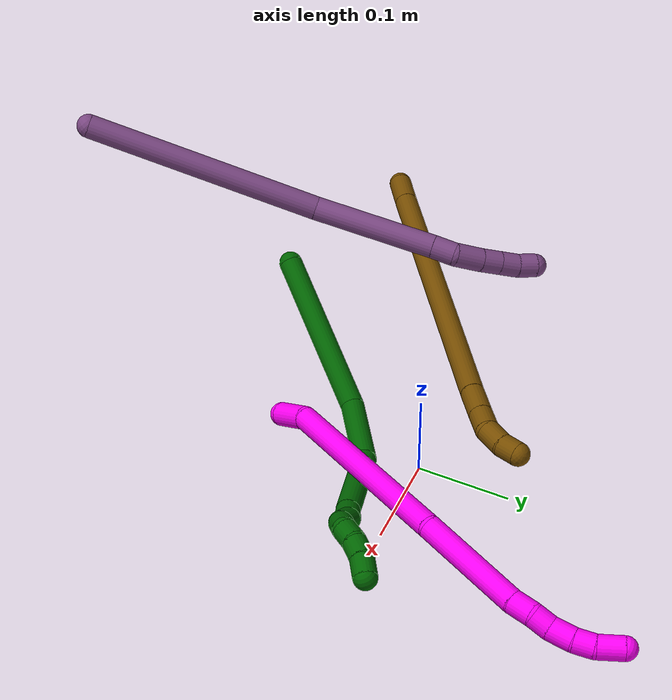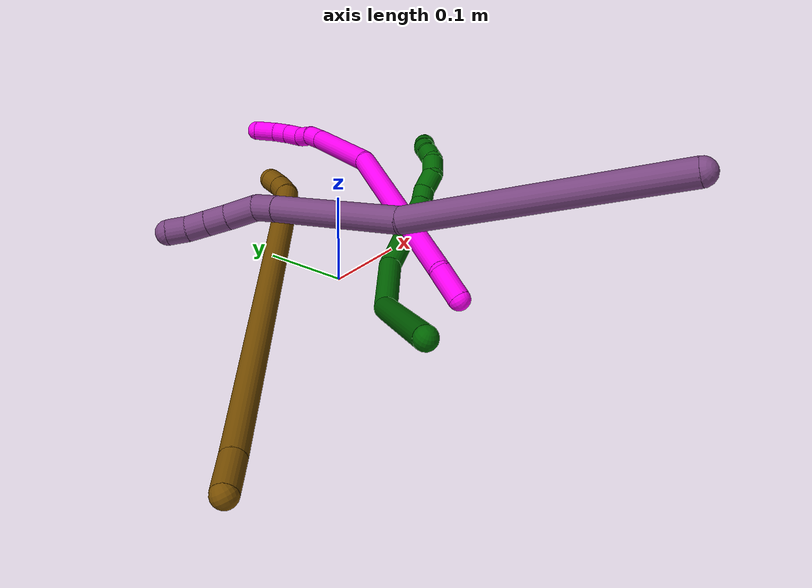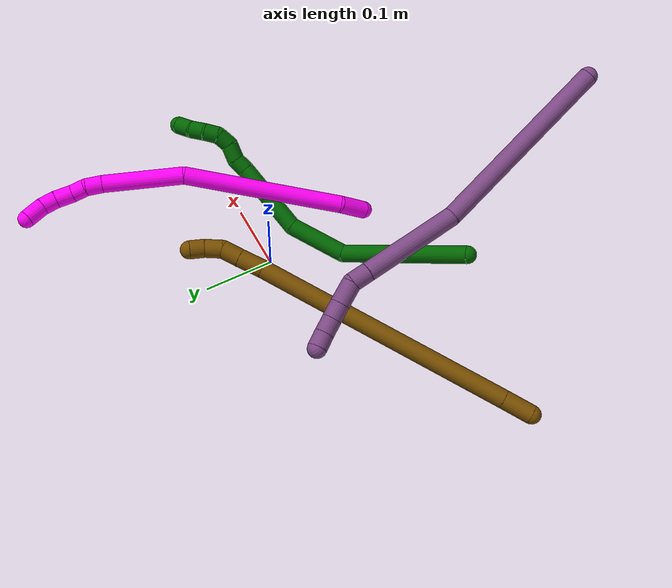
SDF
<sdf version="1.7">
 <world name="default">
  <model name="6">
   <static>0</static>
   <link name="6">
    <collision name="collision-cylinder-e_1_1_4">
     <pose>0.067338 0.02896 -0.053006 -2.64155 0.839648 -2.10228</pose>
     <geometry><cylinder><radius>0.0125</radius><length>0.180918</length></cylinder></geometry>
     <surface>
      <friction><ode><mu>1.16</mu><mu2>1.16</mu2><slip1>0</slip1><slip2>0</slip2></ode></friction>
      <contact><ode><kp>1e+06</kp><kd>1</kd><max_vel>0</max_vel><min_depth>0.001</min_depth></ode></contact>
     </surface>
    </collision>
    <visual name="visual-cylinder-e_1_1_4">
     <pose>0.067338 0.02896 -0.053006 -2.64155 0.839648 -2.10228</pose>
     <geometry><cylinder><radius>0.0125</radius><length>0.180918</length></cylinder></geometry>
     <material><ambient>0 0.392157 0.003922 1</ambient></material>
    </visual>
    <collision name="collision-cylinder-e_2_4_5">
     <pose>0.174489 0.070004 -0.11119 -1.97562 1.25188 -1.66256</pose>
     <geometry><cylinder><radius>0.0125</radius><length>0.083853</length></cylinder></geometry>
     <surface>
      <friction><ode><mu>1.16</mu><mu2>1.16</mu2><slip1>0</slip1><slip2>0</slip2></ode></friction>
      <contact><ode><kp>1e+06</kp><kd>1</kd><max_vel>0</max_vel><min_depth>0.001</min_depth></ode></contact>
     </surface>
    </collision>
    <visual name="visual-cylinder-e_2_4_5">
     <pose>0.174489 0.070004 -0.11119 -1.97562 1.25188 -1.66256</pose>
     <geometry><cylinder><radius>0.0125</radius><length>0.083853</length></cylinder></geometry>
     <material><ambient>0 0.392157 0.003922 1</ambient></material>
    </visual>
    <collision name="collision-cylinder-e_3_5_6">
     <pose>0.266361 0.08673 -0.104798 -0.381644 1.33577 -0.302428</pose>
     <geometry><cylinder><radius>0.0125</radius><length>0.107063</length></cylinder></geometry>
     <surface>
      <friction><ode><mu>1.16</mu><mu2>1.16</mu2><slip1>0</slip1><slip2>0</slip2></ode></friction>
      <contact><ode><kp>1e+06</kp><kd>1</kd><max_vel>0</max_vel><min_depth>0.001</min_depth></ode></contact>
     </surface>
    </collision>
    <visual name="visual-cylinder-e_3_5_6">
     <pose>0.266361 0.08673 -0.104798 -0.381644 1.33577 -0.302428</pose>
     <geometry><cylinder><radius>0.0125</radius><length>0.107063</length></cylinder></geometry>
     <material><ambient>0 0.392157 0.003922 1</ambient></material>
    </visual>
    <collision name="collision-cylinder-e_4_6_7">
     <pose>0.327793 0.094303 -0.090663 -0.851566 1.17688 -0.587748</pose>
     <geometry><cylinder><radius>0.0125</radius><length>0.020298</length></cylinder></geometry>
     <surface>
      <friction><ode><mu>1.16</mu><mu2>1.16</mu2><slip1>0</slip1><slip2>0</slip2></ode></friction>
      <contact><ode><kp>1e+06</kp><kd>1</kd><max_vel>0</max_vel><min_depth>0.001</min_depth></ode></contact>
     </surface>
    </collision>
    <visual name="visual-cylinder-e_4_6_7">
     <pose>0.327793 0.094303 -0.090663 -0.851566 1.17688 -0.587748</pose>
     <geometry><cylinder><radius>0.0125</radius><length>0.020298</length></cylinder></geometry>
     <material><ambient>0 0.392157 0.003922 1</ambient></material>
    </visual>
    <collision name="collision-cylinder-e_5_7_8">
     <pose>0.347242 0.097735 -0.081274 -0.073385 0.97439 -0.038891</pose>
     <geometry><cylinder><radius>0.0125</radius><length>0.024361</length></cylinder></geometry>
     <surface>
      <friction><ode><mu>1.16</mu><mu2>1.16</mu2><slip1>0</slip1><slip2>0</slip2></ode></friction>
      <contact><ode><kp>1e+06</kp><kd>1</kd><max_vel>0</max_vel><min_depth>0.001</min_depth></ode></contact>
     </surface>
    </collision>
    <visual name="visual-cylinder-e_5_7_8">
     <pose>0.347242 0.097735 -0.081274 -0.073385 0.97439 -0.038891</pose>
     <geometry><cylinder><radius>0.0125</radius><length>0.024361</length></cylinder></geometry>
     <material><ambient>0 0.392157 0.003922 1</ambient></material>
    </visual>
    <collision name="collision-cylinder-e_6_8_9">
     <pose>0.365999 0.102929 -0.071322 -0.982727 0.994635 -0.565414</pose>
     <geometry><cylinder><radius>0.0125</radius><length>0.020702</length></cylinder></geometry>
     <surface>
      <friction><ode><mu>1.16</mu><mu2>1.16</mu2><slip1>0</slip1><slip2>0</slip2></ode></friction>
      <contact><ode><kp>1e+06</kp><kd>1</kd><max_vel>0</max_vel><min_depth>0.001</min_depth></ode></contact>
     </surface>
    </collision>
    <visual name="visual-cylinder-e_6_8_9">
     <pose>0.365999 0.102929 -0.071322 -0.982727 0.994635 -0.565414</pose>
     <geometry><cylinder><radius>0.0125</radius><length>0.020702</length></cylinder></geometry>
     <material><ambient>0 0.392157 0.003922 1</ambient></material>
    </visual>
    <collision name="collision-cylinder-e_7_9_10">
     <pose>0.382726 0.113534 -0.06983 -1.84076 0.919366 -1.15366</pose>
     <geometry><cylinder><radius>0.0125</radius><length>0.020238</length></cylinder></geometry>
     <surface>
      <friction><ode><mu>1.16</mu><mu2>1.16</mu2><slip1>0</slip1><slip2>0</slip2></ode></friction>
      <contact><ode><kp>1e+06</kp><kd>1</kd><max_vel>0</max_vel><min_depth>0.001</min_depth></ode></contact>
     </surface>
    </collision>
    <visual name="visual-cylinder-e_7_9_10">
     <pose>0.382726 0.113534 -0.06983 -1.84076 0.919366 -1.15366</pose>
     <geometry><cylinder><radius>0.0125</radius><length>0.020238</length></cylinder></geometry>
     <material><ambient>0 0.392157 0.003922 1</ambient></material>
    </visual>
    <collision name="collision-cylinder-e_8_10_11">
     <pose>0.399352 0.123732 -0.074987 -2.2586 0.99692 -1.71157</pose>
     <geometry><cylinder><radius>0.0125</radius><length>0.020429</length></cylinder></geometry>
     <surface>
      <friction><ode><mu>1.16</mu><mu2>1.16</mu2><slip1>0</slip1><slip2>0</slip2></ode></friction>
      <contact><ode><kp>1e+06</kp><kd>1</kd><max_vel>0</max_vel><min_depth>0.001</min_depth></ode></contact>
     </surface>
    </collision>
    <visual name="visual-cylinder-e_8_10_11">
     <pose>0.399352 0.123732 -0.074987 -2.2586 0.99692 -1.71157</pose>
     <geometry><cylinder><radius>0.0125</radius><length>0.020429</length></cylinder></geometry>
     <material><ambient>0 0.392157 0.003922 1</ambient></material>
    </visual>
    <collision name="collision-cylinder-e_9_11_2">
     <pose>0.418059 0.130088 -0.082461 -2.65902 1.15573 -2.41993</pose>
     <geometry><cylinder><radius>0.0125</radius><length>0.022138</length></cylinder></geometry>
     <surface>
      <friction><ode><mu>1.16</mu><mu2>1.16</mu2><slip1>0</slip1><slip2>0</slip2></ode></friction>
      <contact><ode><kp>1e+06</kp><kd>1</kd><max_vel>0</max_vel><min_depth>0.001</min_depth></ode></contact>
     </surface>
    </collision>
    <visual name="visual-cylinder-e_9_11_2">
     <pose>0.418059 0.130088 -0.082461 -2.65902 1.15573 -2.41993</pose>
     <geometry><cylinder><radius>0.0125</radius><length>0.022138</length></cylinder></geometry>
     <material><ambient>0 0.392157 0.003922 1</ambient></material>
    </visual>
    <collision name="collision-sphere-2">
     <pose>0.428188 0.132159 -0.086415 0 -0 0</pose>
     <geometry><sphere><radius>0.0125</radius></sphere></geometry>
     <surface>
      <friction><ode><mu>1.16</mu><mu2>1.16</mu2><slip1>0</slip1><slip2>0</slip2></ode></friction>
      <contact><ode><kp>1e+06</kp><kd>1</kd><max_vel>0</max_vel><min_depth>0.001</min_depth></ode></contact>
     </surface>
    </collision>
    <visual name="visual-sphere-2">
     <pose>0.428188 0.132159 -0.086415 0 -0 0</pose>
     <geometry><sphere><radius>0.0125</radius></sphere></geometry>
     <material><ambient>0 0.392157 0.003922 1</ambient></material>
    </visual>
    <collision name="collision-sphere-11">
     <pose>0.40793 0.128017 -0.078507 0 -0 0</pose>
     <geometry><sphere><radius>0.0125</radius></sphere></geometry>
     <surface>
      <friction><ode><mu>1.16</mu><mu2>1.16</mu2><slip1>0</slip1><slip2>0</slip2></ode></friction>
      <contact><ode><kp>1e+06</kp><kd>1</kd><max_vel>0</max_vel><min_depth>0.001</min_depth></ode></contact>
     </surface>
    </collision>
    <visual name="visual-sphere-11">
     <pose>0.40793 0.128017 -0.078507 0 -0 0</pose>
     <geometry><sphere><radius>0.0125</radius></sphere></geometry>
     <material><ambient>0 0.392157 0.003922 1</ambient></material>
    </visual>
    <collision name="collision-sphere-10">
     <pose>0.390773 0.119447 -0.071466 0 -0 0</pose>
     <geometry><sphere><radius>0.0125</radius></sphere></geometry>
     <surface>
      <friction><ode><mu>1.16</mu><mu2>1.16</mu2><slip1>0</slip1><slip2>0</slip2></ode></friction>
      <contact><ode><kp>1e+06</kp><kd>1</kd><max_vel>0</max_vel><min_depth>0.001</min_depth></ode></contact>
     </surface>
    </collision>
    <visual name="visual-sphere-10">
     <pose>0.390773 0.119447 -0.071466 0 -0 0</pose>
     <geometry><sphere><radius>0.0125</radius></sphere></geometry>
     <material><ambient>0 0.392157 0.003922 1</ambient></material>
    </visual>
    <collision name="collision-sphere-9">
     <pose>0.37468 0.107621 -0.068194 0 -0 0</pose>
     <geometry><sphere><radius>0.0125</radius></sphere></geometry>
     <surface>
      <friction><ode><mu>1.16</mu><mu2>1.16</mu2><slip1>0</slip1><slip2>0</slip2></ode></friction>
      <contact><ode><kp>1e+06</kp><kd>1</kd><max_vel>0</max_vel><min_depth>0.001</min_depth></ode></contact>
     </surface>
    </collision>
    <visual name="visual-sphere-9">
     <pose>0.37468 0.107621 -0.068194 0 -0 0</pose>
     <geometry><sphere><radius>0.0125</radius></sphere></geometry>
     <material><ambient>0 0.392157 0.003922 1</ambient></material>
    </visual>
    <collision name="collision-sphere-4">
     <pose>0.134677 0.057921 -0.106012 0 -0 0</pose>
     <geometry><sphere><radius>0.0125</radius></sphere></geometry>
     <surface>
      <friction><ode><mu>1.16</mu><mu2>1.16</mu2><slip1>0</slip1><slip2>0</slip2></ode></friction>
      <contact><ode><kp>1e+06</kp><kd>1</kd><max_vel>0</max_vel><min_depth>0.001</min_depth></ode></contact>
     </surface>
    </collision>
    <visual name="visual-sphere-4">
     <pose>0.134677 0.057921 -0.106012 0 -0 0</pose>
     <geometry><sphere><radius>0.0125</radius></sphere></geometry>
     <material><ambient>0 0.392157 0.003922 1</ambient></material>
    </visual>
    <collision name="collision-sphere-1">
     <geometry><sphere><radius>0.0125</radius></sphere></geometry>
     <surface>
      <friction><ode><mu>1.16</mu><mu2>1.16</mu2><slip1>0</slip1><slip2>0</slip2></ode></friction>
      <contact><ode><kp>1e+06</kp><kd>1</kd><max_vel>0</max_vel><min_depth>0.001</min_depth></ode></contact>
     </surface>
    </collision>
    <visual name="visual-sphere-1">
     <geometry><sphere><radius>0.0125</radius></sphere></geometry>
     <material><ambient>0 0.392157 0.003922 1</ambient></material>
    </visual>
    <collision name="collision-sphere-8">
     <pose>0.357319 0.098237 -0.074451 0 -0 0</pose>
     <geometry><sphere><radius>0.0125</radius></sphere></geometry>
     <surface>
      <friction><ode><mu>1.16</mu><mu2>1.16</mu2><slip1>0</slip1><slip2>0</slip2></ode></friction>
      <contact><ode><kp>1e+06</kp><kd>1</kd><max_vel>0</max_vel><min_depth>0.001</min_depth></ode></contact>
     </surface>
    </collision>
    <visual name="visual-sphere-8">
     <pose>0.357319 0.098237 -0.074451 0 -0 0</pose>
     <geometry><sphere><radius>0.0125</radius></sphere></geometry>
     <material><ambient>0 0.392157 0.003922 1</ambient></material>
    </visual>
    <collision name="collision-sphere-5">
     <pose>0.214301 0.082087 -0.116367 0 -0 0</pose>
     <geometry><sphere><radius>0.0125</radius></sphere></geometry>
     <surface>
      <friction><ode><mu>1.16</mu><mu2>1.16</mu2><slip1>0</slip1><slip2>0</slip2></ode></friction>
      <contact><ode><kp>1e+06</kp><kd>1</kd><max_vel>0</max_vel><min_depth>0.001</min_depth></ode></contact>
     </surface>
    </collision>
    <visual name="visual-sphere-5">
     <pose>0.214301 0.082087 -0.116367 0 -0 0</pose>
     <geometry><sphere><radius>0.0125</radius></sphere></geometry>
     <material><ambient>0 0.392157 0.003922 1</ambient></material>
    </visual>
    <collision name="collision-sphere-6">
     <pose>0.318421 0.091373 -0.093229 0 -0 0</pose>
     <geometry><sphere><radius>0.0125</radius></sphere></geometry>
     <surface>
      <friction><ode><mu>1.16</mu><mu2>1.16</mu2><slip1>0</slip1><slip2>0</slip2></ode></friction>
      <contact><ode><kp>1e+06</kp><kd>1</kd><max_vel>0</max_vel><min_depth>0.001</min_depth></ode></contact>
     </surface>
    </collision>
    <visual name="visual-sphere-6">
     <pose>0.318421 0.091373 -0.093229 0 -0 0</pose>
     <geometry><sphere><radius>0.0125</radius></sphere></geometry>
     <material><ambient>0 0.392157 0.003922 1</ambient></material>
    </visual>
    <collision name="collision-sphere-7">
     <pose>0.337164 0.097234 -0.088097 0 -0 0</pose>
     <geometry><sphere><radius>0.0125</radius></sphere></geometry>
     <surface>
      <friction><ode><mu>1.16</mu><mu2>1.16</mu2><slip1>0</slip1><slip2>0</slip2></ode></friction>
      <contact><ode><kp>1e+06</kp><kd>1</kd><max_vel>0</max_vel><min_depth>0.001</min_depth></ode></contact>
     </surface>
    </collision>
    <visual name="visual-sphere-7">
     <pose>0.337164 0.097234 -0.088097 0 -0 0</pose>
     <geometry><sphere><radius>0.0125</radius></sphere></geometry>
     <material><ambient>0 0.392157 0.003922 1</ambient></material>
    </visual>
    <inertial>
     <pose>0.20636 0.069053 -0.080401 0 -0 0</pose>
     <mass>0.5</mass>
     <inertia>
      <ixx>-0.000426</ixx>
      <ixy>0</ixy>
      <ixz>0</ixz>
      <iyy>0.000234</iyy>
      <iyz>0</iyz>
      <izz>-0.000729</izz>
     </inertia>
    </inertial>
   </link>
   <pose>-0.154588 -0.221826 0.072921 0.384717 -0.113508 0.257564</pose>
  </model>
  <model name="10">
   <static>0</static>
   <link name="10">
    <collision name="collision-cylinder-e_1_1_4">
     <pose>0.002266 0.019179 -0.004965 -1.82411 0.113876 -0.147004</pose>
     <geometry><cylinder><radius>0.0125</radius><length>0.039881</length></cylinder></geometry>
     <surface>
      <friction><ode><mu>1.16</mu><mu2>1.16</mu2><slip1>0</slip1><slip2>0</slip2></ode></friction>
      <contact><ode><kp>1e+06</kp><kd>1</kd><max_vel>0</max_vel><min_depth>0.001</min_depth></ode></contact>
     </surface>
    </collision>
    <visual name="visual-cylinder-e_1_1_4">
     <pose>0.002266 0.019179 -0.004965 -1.82411 0.113876 -0.147004</pose>
     <geometry><cylinder><radius>0.0125</radius><length>0.039881</length></cylinder></geometry>
     <material><ambient>1 0 0.964706 1</ambient></material>
    </visual>
    <collision name="collision-cylinder-e_2_4_5">
     <pose>0.054549 0.130635 -0.051895 -1.99761 0.458363 -0.695285</pose>
     <geometry><cylinder><radius>0.0125</radius><length>0.226078</length></cylinder></geometry>
     <surface>
      <friction><ode><mu>1.16</mu><mu2>1.16</mu2><slip1>0</slip1><slip2>0</slip2></ode></friction>
      <contact><ode><kp>1e+06</kp><kd>1</kd><max_vel>0</max_vel><min_depth>0.001</min_depth></ode></contact>
     </surface>
    </collision>
    <visual name="visual-cylinder-e_2_4_5">
     <pose>0.054549 0.130635 -0.051895 -1.99761 0.458363 -0.695285</pose>
     <geometry><cylinder><radius>0.0125</radius><length>0.226078</length></cylinder></geometry>
     <material><ambient>1 0 0.964706 1</ambient></material>
    </visual>
    <collision name="collision-cylinder-e_3_5_6">
     <pose>0.129658 0.259878 -0.130156 -2.34705 0.451034 -1.00074</pose>
     <geometry><cylinder><radius>0.0125</radius><length>0.115126</length></cylinder></geometry>
     <surface>
      <friction><ode><mu>1.16</mu><mu2>1.16</mu2><slip1>0</slip1><slip2>0</slip2></ode></friction>
      <contact><ode><kp>1e+06</kp><kd>1</kd><max_vel>0</max_vel><min_depth>0.001</min_depth></ode></contact>
     </surface>
    </collision>
    <visual name="visual-cylinder-e_3_5_6">
     <pose>0.129658 0.259878 -0.130156 -2.34705 0.451034 -1.00074</pose>
     <geometry><cylinder><radius>0.0125</radius><length>0.115126</length></cylinder></geometry>
     <material><ambient>1 0 0.964706 1</ambient></material>
    </visual>
    <collision name="collision-cylinder-e_4_6_7">
     <pose>0.15825 0.304901 -0.174687 -2.36712 0.294945 -0.698626</pose>
     <geometry><cylinder><radius>0.0125</radius><length>0.024081</length></cylinder></geometry>
     <surface>
      <friction><ode><mu>1.16</mu><mu2>1.16</mu2><slip1>0</slip1><slip2>0</slip2></ode></friction>
      <contact><ode><kp>1e+06</kp><kd>1</kd><max_vel>0</max_vel><min_depth>0.001</min_depth></ode></contact>
     </surface>
    </collision>
    <visual name="visual-cylinder-e_4_6_7">
     <pose>0.15825 0.304901 -0.174687 -2.36712 0.294945 -0.698626</pose>
     <geometry><cylinder><radius>0.0125</radius><length>0.024081</length></cylinder></geometry>
     <material><ambient>1 0 0.964706 1</ambient></material>
    </visual>
    <collision name="collision-cylinder-e_5_7_8">
     <pose>0.164932 0.317199 -0.191599 -2.68692 0.318276 -1.21308</pose>
     <geometry><cylinder><radius>0.0125</radius><length>0.020339</length></cylinder></geometry>
     <surface>
      <friction><ode><mu>1.16</mu><mu2>1.16</mu2><slip1>0</slip1><slip2>0</slip2></ode></friction>
      <contact><ode><kp>1e+06</kp><kd>1</kd><max_vel>0</max_vel><min_depth>0.001</min_depth></ode></contact>
     </surface>
    </collision>
    <visual name="visual-cylinder-e_5_7_8">
     <pose>0.164932 0.317199 -0.191599 -2.68692 0.318276 -1.21308</pose>
     <geometry><cylinder><radius>0.0125</radius><length>0.020339</length></cylinder></geometry>
     <material><ambient>1 0 0.964706 1</ambient></material>
    </visual>
    <collision name="collision-cylinder-e_6_8_9">
     <pose>0.170284 0.329164 -0.209997 -2.47019 0.172971 -0.487124</pose>
     <geometry><cylinder><radius>0.0125</radius><length>0.025206</length></cylinder></geometry>
     <surface>
      <friction><ode><mu>1.16</mu><mu2>1.16</mu2><slip1>0</slip1><slip2>0</slip2></ode></friction>
      <contact><ode><kp>1e+06</kp><kd>1</kd><max_vel>0</max_vel><min_depth>0.001</min_depth></ode></contact>
     </surface>
    </collision>
    <visual name="visual-cylinder-e_6_8_9">
     <pose>0.170284 0.329164 -0.209997 -2.47019 0.172971 -0.487124</pose>
     <geometry><cylinder><radius>0.0125</radius><length>0.025206</length></cylinder></geometry>
     <material><ambient>1 0 0.964706 1</ambient></material>
    </visual>
    <collision name="collision-cylinder-e_7_9_10">
     <pose>0.172273 0.343079 -0.228359 -2.51995 -0.016958 0.052779</pose>
     <geometry><cylinder><radius>0.0125</radius><length>0.021265</length></cylinder></geometry>
     <surface>
      <friction><ode><mu>1.16</mu><mu2>1.16</mu2><slip1>0</slip1><slip2>0</slip2></ode></friction>
      <contact><ode><kp>1e+06</kp><kd>1</kd><max_vel>0</max_vel><min_depth>0.001</min_depth></ode></contact>
     </surface>
    </collision>
    <visual name="visual-cylinder-e_7_9_10">
     <pose>0.172273 0.343079 -0.228359 -2.51995 -0.016958 0.052779</pose>
     <geometry><cylinder><radius>0.0125</radius><length>0.021265</length></cylinder></geometry>
     <material><ambient>1 0 0.964706 1</ambient></material>
    </visual>
    <collision name="collision-cylinder-e_8_10_2">
     <pose>0.168107 0.356304 -0.248446 -2.59048 -0.288431 0.948956</pose>
     <geometry><cylinder><radius>0.0125</radius><length>0.028024</length></cylinder></geometry>
     <surface>
      <friction><ode><mu>1.16</mu><mu2>1.16</mu2><slip1>0</slip1><slip2>0</slip2></ode></friction>
      <contact><ode><kp>1e+06</kp><kd>1</kd><max_vel>0</max_vel><min_depth>0.001</min_depth></ode></contact>
     </surface>
    </collision>
    <visual name="visual-cylinder-e_8_10_2">
     <pose>0.168107 0.356304 -0.248446 -2.59048 -0.288431 0.948956</pose>
     <geometry><cylinder><radius>0.0125</radius><length>0.028024</length></cylinder></geometry>
     <material><ambient>1 0 0.964706 1</ambient></material>
    </visual>
    <collision name="collision-sphere-2">
     <pose>0.164121 0.363338 -0.25989 0 -0 0</pose>
     <geometry><sphere><radius>0.0125</radius></sphere></geometry>
     <surface>
      <friction><ode><mu>1.16</mu><mu2>1.16</mu2><slip1>0</slip1><slip2>0</slip2></ode></friction>
      <contact><ode><kp>1e+06</kp><kd>1</kd><max_vel>0</max_vel><min_depth>0.001</min_depth></ode></contact>
     </surface>
    </collision>
    <visual name="visual-sphere-2">
     <pose>0.164121 0.363338 -0.25989 0 -0 0</pose>
     <geometry><sphere><radius>0.0125</radius></sphere></geometry>
     <material><ambient>1 0 0.964706 1</ambient></material>
    </visual>
    <collision name="collision-sphere-10">
     <pose>0.172092 0.34927 -0.237002 0 -0 0</pose>
     <geometry><sphere><radius>0.0125</radius></sphere></geometry>
     <surface>
      <friction><ode><mu>1.16</mu><mu2>1.16</mu2><slip1>0</slip1><slip2>0</slip2></ode></friction>
      <contact><ode><kp>1e+06</kp><kd>1</kd><max_vel>0</max_vel><min_depth>0.001</min_depth></ode></contact>
     </surface>
    </collision>
    <visual name="visual-sphere-10">
     <pose>0.172092 0.34927 -0.237002 0 -0 0</pose>
     <geometry><sphere><radius>0.0125</radius></sphere></geometry>
     <material><ambient>1 0 0.964706 1</ambient></material>
    </visual>
    <collision name="collision-sphere-9">
     <pose>0.172453 0.336887 -0.219717 0 -0 0</pose>
     <geometry><sphere><radius>0.0125</radius></sphere></geometry>
     <surface>
      <friction><ode><mu>1.16</mu><mu2>1.16</mu2><slip1>0</slip1><slip2>0</slip2></ode></friction>
      <contact><ode><kp>1e+06</kp><kd>1</kd><max_vel>0</max_vel><min_depth>0.001</min_depth></ode></contact>
     </surface>
    </collision>
    <visual name="visual-sphere-9">
     <pose>0.172453 0.336887 -0.219717 0 -0 0</pose>
     <geometry><sphere><radius>0.0125</radius></sphere></geometry>
     <material><ambient>1 0 0.964706 1</ambient></material>
    </visual>
    <collision name="collision-sphere-4">
     <pose>0.004532 0.038358 -0.00993 0 -0 0</pose>
     <geometry><sphere><radius>0.0125</radius></sphere></geometry>
     <surface>
      <friction><ode><mu>1.16</mu><mu2>1.16</mu2><slip1>0</slip1><slip2>0</slip2></ode></friction>
      <contact><ode><kp>1e+06</kp><kd>1</kd><max_vel>0</max_vel><min_depth>0.001</min_depth></ode></contact>
     </surface>
    </collision>
    <visual name="visual-sphere-4">
     <pose>0.004532 0.038358 -0.00993 0 -0 0</pose>
     <geometry><sphere><radius>0.0125</radius></sphere></geometry>
     <material><ambient>1 0 0.964706 1</ambient></material>
    </visual>
    <collision name="collision-sphere-1">
     <geometry><sphere><radius>0.0125</radius></sphere></geometry>
     <surface>
      <friction><ode><mu>1.16</mu><mu2>1.16</mu2><slip1>0</slip1><slip2>0</slip2></ode></friction>
      <contact><ode><kp>1e+06</kp><kd>1</kd><max_vel>0</max_vel><min_depth>0.001</min_depth></ode></contact>
     </surface>
    </collision>
    <visual name="visual-sphere-1">
     <geometry><sphere><radius>0.0125</radius></sphere></geometry>
     <material><ambient>1 0 0.964706 1</ambient></material>
    </visual>
    <collision name="collision-sphere-8">
     <pose>0.168115 0.321441 -0.200277 0 -0 0</pose>
     <geometry><sphere><radius>0.0125</radius></sphere></geometry>
     <surface>
      <friction><ode><mu>1.16</mu><mu2>1.16</mu2><slip1>0</slip1><slip2>0</slip2></ode></friction>
      <contact><ode><kp>1e+06</kp><kd>1</kd><max_vel>0</max_vel><min_depth>0.001</min_depth></ode></contact>
     </surface>
    </collision>
    <visual name="visual-sphere-8">
     <pose>0.168115 0.321441 -0.200277 0 -0 0</pose>
     <geometry><sphere><radius>0.0125</radius></sphere></geometry>
     <material><ambient>1 0 0.964706 1</ambient></material>
    </visual>
    <collision name="collision-sphere-5">
     <pose>0.104567 0.222912 -0.09386 0 -0 0</pose>
     <geometry><sphere><radius>0.0125</radius></sphere></geometry>
     <surface>
      <friction><ode><mu>1.16</mu><mu2>1.16</mu2><slip1>0</slip1><slip2>0</slip2></ode></friction>
      <contact><ode><kp>1e+06</kp><kd>1</kd><max_vel>0</max_vel><min_depth>0.001</min_depth></ode></contact>
     </surface>
    </collision>
    <visual name="visual-sphere-5">
     <pose>0.104567 0.222912 -0.09386 0 -0 0</pose>
     <geometry><sphere><radius>0.0125</radius></sphere></geometry>
     <material><ambient>1 0 0.964706 1</ambient></material>
    </visual>
    <collision name="collision-sphere-6">
     <pose>0.15475 0.296844 -0.166452 0 -0 0</pose>
     <geometry><sphere><radius>0.0125</radius></sphere></geometry>
     <surface>
      <friction><ode><mu>1.16</mu><mu2>1.16</mu2><slip1>0</slip1><slip2>0</slip2></ode></friction>
      <contact><ode><kp>1e+06</kp><kd>1</kd><max_vel>0</max_vel><min_depth>0.001</min_depth></ode></contact>
     </surface>
    </collision>
    <visual name="visual-sphere-6">
     <pose>0.15475 0.296844 -0.166452 0 -0 0</pose>
     <geometry><sphere><radius>0.0125</radius></sphere></geometry>
     <material><ambient>1 0 0.964706 1</ambient></material>
    </visual>
    <collision name="collision-sphere-7">
     <pose>0.16175 0.312957 -0.182921 0 -0 0</pose>
     <geometry><sphere><radius>0.0125</radius></sphere></geometry>
     <surface>
      <friction><ode><mu>1.16</mu><mu2>1.16</mu2><slip1>0</slip1><slip2>0</slip2></ode></friction>
      <contact><ode><kp>1e+06</kp><kd>1</kd><max_vel>0</max_vel><min_depth>0.001</min_depth></ode></contact>
     </surface>
    </collision>
    <visual name="visual-sphere-7">
     <pose>0.16175 0.312957 -0.182921 0 -0 0</pose>
     <geometry><sphere><radius>0.0125</radius></sphere></geometry>
     <material><ambient>1 0 0.964706 1</ambient></material>
    </visual>
    <inertial>
     <pose>0.094364 0.199177 -0.10426 0 -0 0</pose>
     <mass>0.5</mass>
     <inertia>
      <ixx>0.0001</ixx>
      <ixy>0</ixy>
      <ixz>0</ixz>
      <iyy>-0.000712</iyy>
      <iyz>0</iyz>
      <izz>-0.001399</izz>
     </inertia>
    </inertial>
   </link>
   <pose>0.008276 -0.15469 0.021081 0.885541 0.379038 0.057408</pose>
  </model>
  <model name="12">
   <static>0</static>
   <link name="12">
    <collision name="collision-cylinder-e_1_1_4">
     <pose>0.0104 0.014576 0.008443 -1.0458 0.553114 -0.324337</pose>
     <geometry><cylinder><radius>0.0125</radius><length>0.039594</length></cylinder></geometry>
     <surface>
      <friction><ode><mu>1.16</mu><mu2>1.16</mu2><slip1>0</slip1><slip2>0</slip2></ode></friction>
      <contact><ode><kp>1e+06</kp><kd>1</kd><max_vel>0</max_vel><min_depth>0.001</min_depth></ode></contact>
     </surface>
    </collision>
    <visual name="visual-cylinder-e_1_1_4">
     <pose>0.0104 0.014576 0.008443 -1.0458 0.553114 -0.324337</pose>
     <geometry><cylinder><radius>0.0125</radius><length>0.039594</length></cylinder></geometry>
     <material><ambient>0.466667 0.301961 0 1</ambient></material>
    </visual>
    <collision name="collision-cylinder-e_2_4_5">
     <pose>0.112005 0.159425 0.09555 -1.02756 0.539917 -0.309813</pose>
     <geometry><cylinder><radius>0.0125</radius><length>0.354837</length></cylinder></geometry>
     <surface>
      <friction><ode><mu>1.16</mu><mu2>1.16</mu2><slip1>0</slip1><slip2>0</slip2></ode></friction>
      <contact><ode><kp>1e+06</kp><kd>1</kd><max_vel>0</max_vel><min_depth>0.001</min_depth></ode></contact>
     </surface>
    </collision>
    <visual name="visual-cylinder-e_2_4_5">
     <pose>0.112005 0.159425 0.09555 -1.02756 0.539917 -0.309813</pose>
     <geometry><cylinder><radius>0.0125</radius><length>0.354837</length></cylinder></geometry>
     <material><ambient>0.466667 0.301961 0 1</ambient></material>
    </visual>
    <collision name="collision-cylinder-e_3_5_6">
     <pose>0.21144 0.302891 0.181624 -1.05902 0.498169 -0.29557</pose>
     <geometry><cylinder><radius>0.0125</radius><length>0.03445</length></cylinder></geometry>
     <surface>
      <friction><ode><mu>1.16</mu><mu2>1.16</mu2><slip1>0</slip1><slip2>0</slip2></ode></friction>
      <contact><ode><kp>1e+06</kp><kd>1</kd><max_vel>0</max_vel><min_depth>0.001</min_depth></ode></contact>
     </surface>
    </collision>
    <visual name="visual-cylinder-e_3_5_6">
     <pose>0.21144 0.302891 0.181624 -1.05902 0.498169 -0.29557</pose>
     <geometry><cylinder><radius>0.0125</radius><length>0.03445</length></cylinder></geometry>
     <material><ambient>0.466667 0.301961 0 1</ambient></material>
    </visual>
    <collision name="collision-cylinder-e_4_6_7">
     <pose>0.22609 0.325679 0.195211 -0.99888 0.512466 -0.28395</pose>
     <geometry><cylinder><radius>0.0125</radius><length>0.026186</length></cylinder></geometry>
     <surface>
      <friction><ode><mu>1.16</mu><mu2>1.16</mu2><slip1>0</slip1><slip2>0</slip2></ode></friction>
      <contact><ode><kp>1e+06</kp><kd>1</kd><max_vel>0</max_vel><min_depth>0.001</min_depth></ode></contact>
     </surface>
    </collision>
    <visual name="visual-cylinder-e_4_6_7">
     <pose>0.22609 0.325679 0.195211 -0.99888 0.512466 -0.28395</pose>
     <geometry><cylinder><radius>0.0125</radius><length>0.026186</length></cylinder></geometry>
     <material><ambient>0.466667 0.301961 0 1</ambient></material>
    </visual>
    <collision name="collision-cylinder-e_5_7_8">
     <pose>0.233531 0.345856 0.207465 -1.04944 0.083439 -0.048317</pose>
     <geometry><cylinder><radius>0.0125</radius><length>0.024492</length></cylinder></geometry>
     <surface>
      <friction><ode><mu>1.16</mu><mu2>1.16</mu2><slip1>0</slip1><slip2>0</slip2></ode></friction>
      <contact><ode><kp>1e+06</kp><kd>1</kd><max_vel>0</max_vel><min_depth>0.001</min_depth></ode></contact>
     </surface>
    </collision>
    <visual name="visual-cylinder-e_5_7_8">
     <pose>0.233531 0.345856 0.207465 -1.04944 0.083439 -0.048317</pose>
     <geometry><cylinder><radius>0.0125</radius><length>0.024492</length></cylinder></geometry>
     <material><ambient>0.466667 0.301961 0 1</ambient></material>
    </visual>
    <collision name="collision-cylinder-e_6_8_2">
     <pose>0.233355 0.364556 0.219637 -0.926906 -0.117334 0.058689</pose>
     <geometry><cylinder><radius>0.0125</radius><length>0.020441</length></cylinder></geometry>
     <surface>
      <friction><ode><mu>1.16</mu><mu2>1.16</mu2><slip1>0</slip1><slip2>0</slip2></ode></friction>
      <contact><ode><kp>1e+06</kp><kd>1</kd><max_vel>0</max_vel><min_depth>0.001</min_depth></ode></contact>
     </surface>
    </collision>
    <visual name="visual-cylinder-e_6_8_2">
     <pose>0.233355 0.364556 0.219637 -0.926906 -0.117334 0.058689</pose>
     <geometry><cylinder><radius>0.0125</radius><length>0.020441</length></cylinder></geometry>
     <material><ambient>0.466667 0.301961 0 1</ambient></material>
    </visual>
    <collision name="collision-sphere-2">
     <pose>0.232159 0.372674 0.22573 0 -0 0</pose>
     <geometry><sphere><radius>0.0125</radius></sphere></geometry>
     <surface>
      <friction><ode><mu>1.16</mu><mu2>1.16</mu2><slip1>0</slip1><slip2>0</slip2></ode></friction>
      <contact><ode><kp>1e+06</kp><kd>1</kd><max_vel>0</max_vel><min_depth>0.001</min_depth></ode></contact>
     </surface>
    </collision>
    <visual name="visual-sphere-2">
     <pose>0.232159 0.372674 0.22573 0 -0 0</pose>
     <geometry><sphere><radius>0.0125</radius></sphere></geometry>
     <material><ambient>0.466667 0.301961 0 1</ambient></material>
    </visual>
    <collision name="collision-sphere-4">
     <pose>0.0208 0.029153 0.016886 0 -0 0</pose>
     <geometry><sphere><radius>0.0125</radius></sphere></geometry>
     <surface>
      <friction><ode><mu>1.16</mu><mu2>1.16</mu2><slip1>0</slip1><slip2>0</slip2></ode></friction>
      <contact><ode><kp>1e+06</kp><kd>1</kd><max_vel>0</max_vel><min_depth>0.001</min_depth></ode></contact>
     </surface>
    </collision>
    <visual name="visual-sphere-4">
     <pose>0.0208 0.029153 0.016886 0 -0 0</pose>
     <geometry><sphere><radius>0.0125</radius></sphere></geometry>
     <material><ambient>0.466667 0.301961 0 1</ambient></material>
    </visual>
    <collision name="collision-sphere-1">
     <geometry><sphere><radius>0.0125</radius></sphere></geometry>
     <surface>
      <friction><ode><mu>1.16</mu><mu2>1.16</mu2><slip1>0</slip1><slip2>0</slip2></ode></friction>
      <contact><ode><kp>1e+06</kp><kd>1</kd><max_vel>0</max_vel><min_depth>0.001</min_depth></ode></contact>
     </surface>
    </collision>
    <visual name="visual-sphere-1">
     <geometry><sphere><radius>0.0125</radius></sphere></geometry>
     <material><ambient>0.466667 0.301961 0 1</ambient></material>
    </visual>
    <collision name="collision-sphere-8">
     <pose>0.234551 0.356439 0.213543 0 -0 0</pose>
     <geometry><sphere><radius>0.0125</radius></sphere></geometry>
     <surface>
      <friction><ode><mu>1.16</mu><mu2>1.16</mu2><slip1>0</slip1><slip2>0</slip2></ode></friction>
      <contact><ode><kp>1e+06</kp><kd>1</kd><max_vel>0</max_vel><min_depth>0.001</min_depth></ode></contact>
     </surface>
    </collision>
    <visual name="visual-sphere-8">
     <pose>0.234551 0.356439 0.213543 0 -0 0</pose>
     <geometry><sphere><radius>0.0125</radius></sphere></geometry>
     <material><ambient>0.466667 0.301961 0 1</ambient></material>
    </visual>
    <collision name="collision-sphere-5">
     <pose>0.203209 0.289698 0.174214 0 -0 0</pose>
     <geometry><sphere><radius>0.0125</radius></sphere></geometry>
     <surface>
      <friction><ode><mu>1.16</mu><mu2>1.16</mu2><slip1>0</slip1><slip2>0</slip2></ode></friction>
      <contact><ode><kp>1e+06</kp><kd>1</kd><max_vel>0</max_vel><min_depth>0.001</min_depth></ode></contact>
     </surface>
    </collision>
    <visual name="visual-sphere-5">
     <pose>0.203209 0.289698 0.174214 0 -0 0</pose>
     <geometry><sphere><radius>0.0125</radius></sphere></geometry>
     <material><ambient>0.466667 0.301961 0 1</ambient></material>
    </visual>
    <collision name="collision-sphere-6">
     <pose>0.21967 0.316084 0.189035 0 -0 0</pose>
     <geometry><sphere><radius>0.0125</radius></sphere></geometry>
     <surface>
      <friction><ode><mu>1.16</mu><mu2>1.16</mu2><slip1>0</slip1><slip2>0</slip2></ode></friction>
      <contact><ode><kp>1e+06</kp><kd>1</kd><max_vel>0</max_vel><min_depth>0.001</min_depth></ode></contact>
     </surface>
    </collision>
    <visual name="visual-sphere-6">
     <pose>0.21967 0.316084 0.189035 0 -0 0</pose>
     <geometry><sphere><radius>0.0125</radius></sphere></geometry>
     <material><ambient>0.466667 0.301961 0 1</ambient></material>
    </visual>
    <collision name="collision-sphere-7">
     <pose>0.23251 0.335274 0.201387 0 -0 0</pose>
     <geometry><sphere><radius>0.0125</radius></sphere></geometry>
     <surface>
      <friction><ode><mu>1.16</mu><mu2>1.16</mu2><slip1>0</slip1><slip2>0</slip2></ode></friction>
      <contact><ode><kp>1e+06</kp><kd>1</kd><max_vel>0</max_vel><min_depth>0.001</min_depth></ode></contact>
     </surface>
    </collision>
    <visual name="visual-sphere-7">
     <pose>0.23251 0.335274 0.201387 0 -0 0</pose>
     <geometry><sphere><radius>0.0125</radius></sphere></geometry>
     <material><ambient>0.466667 0.301961 0 1</ambient></material>
    </visual>
    <inertial>
     <pose>0.127699 0.184065 0.110357 0 -0 0</pose>
     <mass>0.5</mass>
     <inertia>
      <ixx>0.002105</ixx>
      <ixy>0</ixy>
      <ixz>0</ixz>
      <iyy>0.0014</iyy>
      <iyz>0</iyz>
      <izz>-0.004668</izz>
     </inertia>
    </inertial>
   </link>
   <pose>-0.374297 -0.186164 0.022807 -0.530596 -0.267538 -0.444618</pose>
  </model>
  <model name="20">
   <static>0</static>
   <link name="20">
    <collision name="collision-cylinder-e_1_1_4">
     <pose>-0.048493 0.041407 -0.109317 -2.77951 -0.393231 1.65522</pose>
     <geometry><cylinder><radius>0.0125</radius><length>0.253111</length></cylinder></geometry>
     <surface>
      <friction><ode><mu>1.16</mu><mu2>1.16</mu2><slip1>0</slip1><slip2>0</slip2></ode></friction>
      <contact><ode><kp>1e+06</kp><kd>1</kd><max_vel>0</max_vel><min_depth>0.001</min_depth></ode></contact>
     </surface>
    </collision>
    <visual name="visual-cylinder-e_1_1_4">
     <pose>-0.048493 0.041407 -0.109317 -2.77951 -0.393231 1.65522</pose>
     <geometry><cylinder><radius>0.0125</radius><length>0.253111</length></cylinder></geometry>
     <material><ambient>0.478431 0.278431 0.509804 1</ambient></material>
    </visual>
    <collision name="collision-cylinder-e_2_4_5">
     <pose>-0.111306 0.115109 -0.273634 -2.61066 -0.220859 0.774464</pose>
     <geometry><cylinder><radius>0.0125</radius><length>0.130737</length></cylinder></geometry>
     <surface>
      <friction><ode><mu>1.16</mu><mu2>1.16</mu2><slip1>0</slip1><slip2>0</slip2></ode></friction>
      <contact><ode><kp>1e+06</kp><kd>1</kd><max_vel>0</max_vel><min_depth>0.001</min_depth></ode></contact>
     </surface>
    </collision>
    <visual name="visual-cylinder-e_2_4_5">
     <pose>-0.111306 0.115109 -0.273634 -2.61066 -0.220859 0.774464</pose>
     <geometry><cylinder><radius>0.0125</radius><length>0.130737</length></cylinder></geometry>
     <material><ambient>0.478431 0.278431 0.509804 1</ambient></material>
    </visual>
    <collision name="collision-cylinder-e_3_5_6">
     <pose>-0.128093 0.153056 -0.338934 -2.63966 -0.206986 0.76985</pose>
     <geometry><cylinder><radius>0.0125</radius><length>0.02401</length></cylinder></geometry>
     <surface>
      <friction><ode><mu>1.16</mu><mu2>1.16</mu2><slip1>0</slip1><slip2>0</slip2></ode></friction>
      <contact><ode><kp>1e+06</kp><kd>1</kd><max_vel>0</max_vel><min_depth>0.001</min_depth></ode></contact>
     </surface>
    </collision>
    <visual name="visual-cylinder-e_3_5_6">
     <pose>-0.128093 0.153056 -0.338934 -2.63966 -0.206986 0.76985</pose>
     <geometry><cylinder><radius>0.0125</radius><length>0.02401</length></cylinder></geometry>
     <material><ambient>0.478431 0.278431 0.509804 1</ambient></material>
    </visual>
    <collision name="collision-cylinder-e_4_6_7">
     <pose>-0.139719 0.16241 -0.360616 -2.82722 -0.653146 2.26625</pose>
     <geometry><cylinder><radius>0.0125</radius><length>0.030142</length></cylinder></geometry>
     <surface>
      <friction><ode><mu>1.16</mu><mu2>1.16</mu2><slip1>0</slip1><slip2>0</slip2></ode></friction>
      <contact><ode><kp>1e+06</kp><kd>1</kd><max_vel>0</max_vel><min_depth>0.001</min_depth></ode></contact>
     </surface>
    </collision>
    <visual name="visual-cylinder-e_4_6_7">
     <pose>-0.139719 0.16241 -0.360616 -2.82722 -0.653146 2.26625</pose>
     <geometry><cylinder><radius>0.0125</radius><length>0.030142</length></cylinder></geometry>
     <material><ambient>0.478431 0.278431 0.509804 1</ambient></material>
    </visual>
    <collision name="collision-cylinder-e_5_7_8">
     <pose>-0.155561 0.169029 -0.379609 -2.77545 -0.686813 2.18606</pose>
     <geometry><cylinder><radius>0.0125</radius><length>0.021082</length></cylinder></geometry>
     <surface>
      <friction><ode><mu>1.16</mu><mu2>1.16</mu2><slip1>0</slip1><slip2>0</slip2></ode></friction>
      <contact><ode><kp>1e+06</kp><kd>1</kd><max_vel>0</max_vel><min_depth>0.001</min_depth></ode></contact>
     </surface>
    </collision>
    <visual name="visual-cylinder-e_5_7_8">
     <pose>-0.155561 0.169029 -0.379609 -2.77545 -0.686813 2.18606</pose>
     <geometry><cylinder><radius>0.0125</radius><length>0.021082</length></cylinder></geometry>
     <material><ambient>0.478431 0.278431 0.509804 1</ambient></material>
    </visual>
    <collision name="collision-cylinder-e_6_8_9">
     <pose>-0.168811 0.174812 -0.394703 -2.77604 -0.686451 2.18693</pose>
     <geometry><cylinder><radius>0.0125</radius><length>0.020718</length></cylinder></geometry>
     <surface>
      <friction><ode><mu>1.16</mu><mu2>1.16</mu2><slip1>0</slip1><slip2>0</slip2></ode></friction>
      <contact><ode><kp>1e+06</kp><kd>1</kd><max_vel>0</max_vel><min_depth>0.001</min_depth></ode></contact>
     </surface>
    </collision>
    <visual name="visual-cylinder-e_6_8_9">
     <pose>-0.168811 0.174812 -0.394703 -2.77604 -0.686451 2.18693</pose>
     <geometry><cylinder><radius>0.0125</radius><length>0.020718</length></cylinder></geometry>
     <material><ambient>0.478431 0.278431 0.509804 1</ambient></material>
    </visual>
    <collision name="collision-cylinder-e_7_9_2">
     <pose>-0.182255 0.181625 -0.408438 -2.57816 -0.74932 1.87264</pose>
     <geometry><cylinder><radius>0.0125</radius><length>0.0202</length></cylinder></geometry>
     <surface>
      <friction><ode><mu>1.16</mu><mu2>1.16</mu2><slip1>0</slip1><slip2>0</slip2></ode></friction>
      <contact><ode><kp>1e+06</kp><kd>1</kd><max_vel>0</max_vel><min_depth>0.001</min_depth></ode></contact>
     </surface>
    </collision>
    <visual name="visual-cylinder-e_7_9_2">
     <pose>-0.182255 0.181625 -0.408438 -2.57816 -0.74932 1.87264</pose>
     <geometry><cylinder><radius>0.0125</radius><length>0.0202</length></cylinder></geometry>
     <material><ambient>0.478431 0.278431 0.509804 1</ambient></material>
    </visual>
    <collision name="collision-sphere-2">
     <pose>-0.189135 0.185575 -0.41469 0 -0 0</pose>
     <geometry><sphere><radius>0.0125</radius></sphere></geometry>
     <surface>
      <friction><ode><mu>1.16</mu><mu2>1.16</mu2><slip1>0</slip1><slip2>0</slip2></ode></friction>
      <contact><ode><kp>1e+06</kp><kd>1</kd><max_vel>0</max_vel><min_depth>0.001</min_depth></ode></contact>
     </surface>
    </collision>
    <visual name="visual-sphere-2">
     <pose>-0.189135 0.185575 -0.41469 0 -0 0</pose>
     <geometry><sphere><radius>0.0125</radius></sphere></geometry>
     <material><ambient>0.478431 0.278431 0.509804 1</ambient></material>
    </visual>
    <collision name="collision-sphere-9">
     <pose>-0.175376 0.177676 -0.402187 0 -0 0</pose>
     <geometry><sphere><radius>0.0125</radius></sphere></geometry>
     <surface>
      <friction><ode><mu>1.16</mu><mu2>1.16</mu2><slip1>0</slip1><slip2>0</slip2></ode></friction>
      <contact><ode><kp>1e+06</kp><kd>1</kd><max_vel>0</max_vel><min_depth>0.001</min_depth></ode></contact>
     </surface>
    </collision>
    <visual name="visual-sphere-9">
     <pose>-0.175376 0.177676 -0.402187 0 -0 0</pose>
     <geometry><sphere><radius>0.0125</radius></sphere></geometry>
     <material><ambient>0.478431 0.278431 0.509804 1</ambient></material>
    </visual>
    <collision name="collision-sphere-4">
     <pose>-0.096986 0.082814 -0.218634 0 -0 0</pose>
     <geometry><sphere><radius>0.0125</radius></sphere></geometry>
     <surface>
      <friction><ode><mu>1.16</mu><mu2>1.16</mu2><slip1>0</slip1><slip2>0</slip2></ode></friction>
      <contact><ode><kp>1e+06</kp><kd>1</kd><max_vel>0</max_vel><min_depth>0.001</min_depth></ode></contact>
     </surface>
    </collision>
    <visual name="visual-sphere-4">
     <pose>-0.096986 0.082814 -0.218634 0 -0 0</pose>
     <geometry><sphere><radius>0.0125</radius></sphere></geometry>
     <material><ambient>0.478431 0.278431 0.509804 1</ambient></material>
    </visual>
    <collision name="collision-sphere-1">
     <geometry><sphere><radius>0.0125</radius></sphere></geometry>
     <surface>
      <friction><ode><mu>1.16</mu><mu2>1.16</mu2><slip1>0</slip1><slip2>0</slip2></ode></friction>
      <contact><ode><kp>1e+06</kp><kd>1</kd><max_vel>0</max_vel><min_depth>0.001</min_depth></ode></contact>
     </surface>
    </collision>
    <visual name="visual-sphere-1">
     <geometry><sphere><radius>0.0125</radius></sphere></geometry>
     <material><ambient>0.478431 0.278431 0.509804 1</ambient></material>
    </visual>
    <collision name="collision-sphere-8">
     <pose>-0.162245 0.171947 -0.38722 0 -0 0</pose>
     <geometry><sphere><radius>0.0125</radius></sphere></geometry>
     <surface>
      <friction><ode><mu>1.16</mu><mu2>1.16</mu2><slip1>0</slip1><slip2>0</slip2></ode></friction>
      <contact><ode><kp>1e+06</kp><kd>1</kd><max_vel>0</max_vel><min_depth>0.001</min_depth></ode></contact>
     </surface>
    </collision>
    <visual name="visual-sphere-8">
     <pose>-0.162245 0.171947 -0.38722 0 -0 0</pose>
     <geometry><sphere><radius>0.0125</radius></sphere></geometry>
     <material><ambient>0.478431 0.278431 0.509804 1</ambient></material>
    </visual>
    <collision name="collision-sphere-5">
     <pose>-0.125626 0.147404 -0.328635 0 -0 0</pose>
     <geometry><sphere><radius>0.0125</radius></sphere></geometry>
     <surface>
      <friction><ode><mu>1.16</mu><mu2>1.16</mu2><slip1>0</slip1><slip2>0</slip2></ode></friction>
      <contact><ode><kp>1e+06</kp><kd>1</kd><max_vel>0</max_vel><min_depth>0.001</min_depth></ode></contact>
     </surface>
    </collision>
    <visual name="visual-sphere-5">
     <pose>-0.125626 0.147404 -0.328635 0 -0 0</pose>
     <geometry><sphere><radius>0.0125</radius></sphere></geometry>
     <material><ambient>0.478431 0.278431 0.509804 1</ambient></material>
    </visual>
    <collision name="collision-sphere-6">
     <pose>-0.13056 0.158709 -0.349234 0 -0 0</pose>
     <geometry><sphere><radius>0.0125</radius></sphere></geometry>
     <surface>
      <friction><ode><mu>1.16</mu><mu2>1.16</mu2><slip1>0</slip1><slip2>0</slip2></ode></friction>
      <contact><ode><kp>1e+06</kp><kd>1</kd><max_vel>0</max_vel><min_depth>0.001</min_depth></ode></contact>
     </surface>
    </collision>
    <visual name="visual-sphere-6">
     <pose>-0.13056 0.158709 -0.349234 0 -0 0</pose>
     <geometry><sphere><radius>0.0125</radius></sphere></geometry>
     <material><ambient>0.478431 0.278431 0.509804 1</ambient></material>
    </visual>
    <collision name="collision-sphere-7">
     <pose>-0.148877 0.166111 -0.371998 0 -0 0</pose>
     <geometry><sphere><radius>0.0125</radius></sphere></geometry>
     <surface>
      <friction><ode><mu>1.16</mu><mu2>1.16</mu2><slip1>0</slip1><slip2>0</slip2></ode></friction>
      <contact><ode><kp>1e+06</kp><kd>1</kd><max_vel>0</max_vel><min_depth>0.001</min_depth></ode></contact>
     </surface>
    </collision>
    <visual name="visual-sphere-7">
     <pose>-0.148877 0.166111 -0.371998 0 -0 0</pose>
     <geometry><sphere><radius>0.0125</radius></sphere></geometry>
     <material><ambient>0.478431 0.278431 0.509804 1</ambient></material>
    </visual>
    <inertial>
     <pose>-0.089143 0.089908 -0.213763 0 -0 0</pose>
     <mass>0.5</mass>
     <inertia><ixx>0.001401</ixx><ixy>0</ixy><ixz>0</ixz><iyy>0.001597</iyy><iyz>0</iyz><izz>-7e-06</izz></inertia>
    </inertial>
   </link>
   <pose>-0.084074 -0.41851 0.254093 0.946692 -0.215344 -0.081948</pose>
  </model>
 </world>
</sdf>
